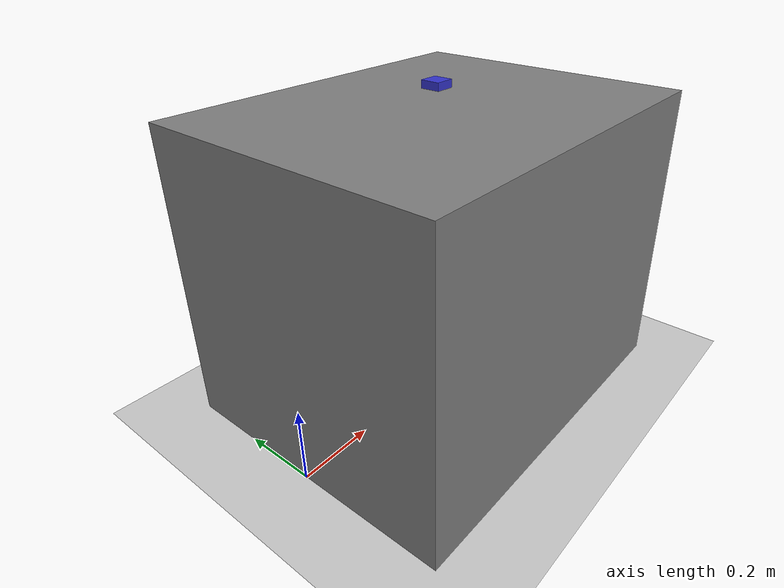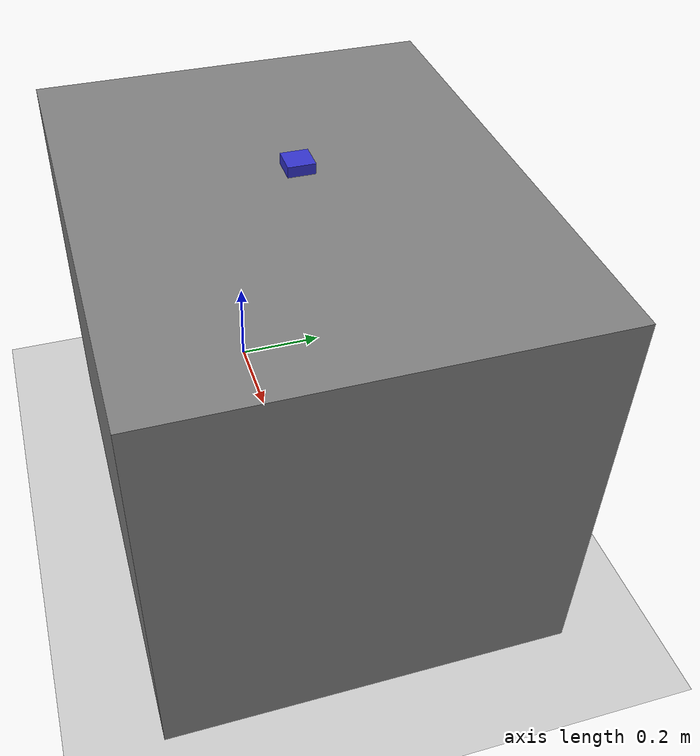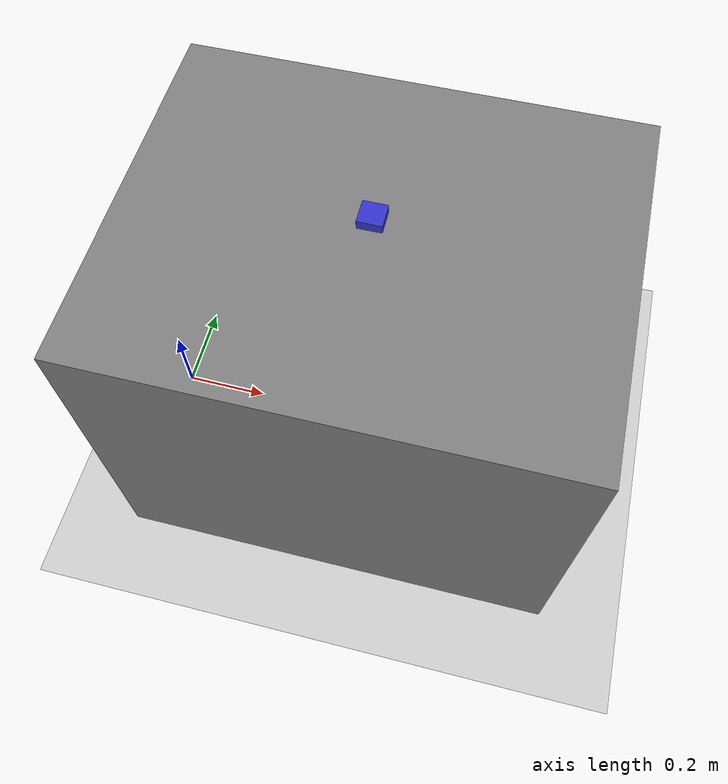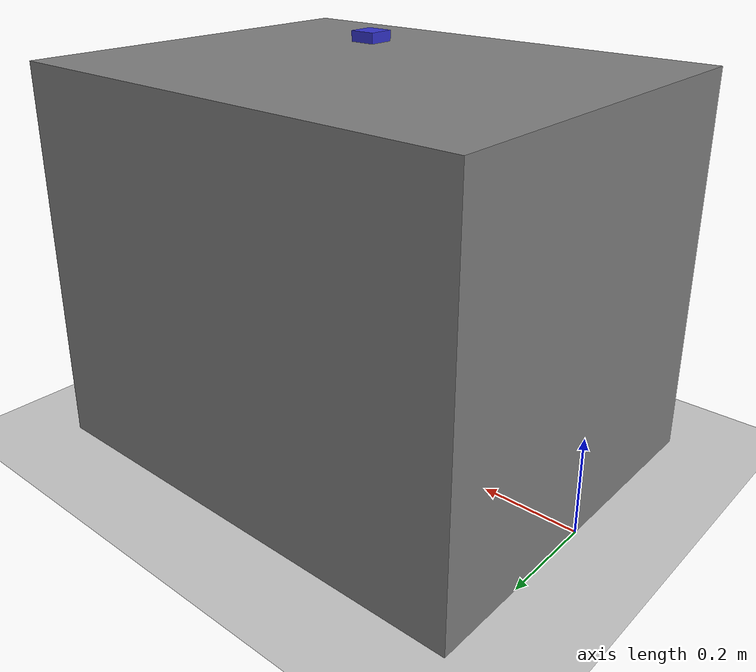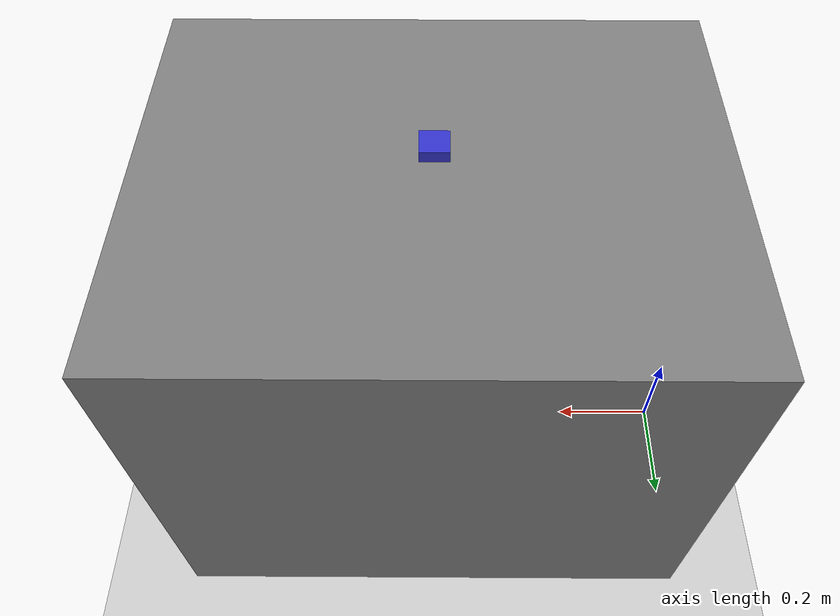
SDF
<?xml version="1.0"?>
<sdf version="1.6">
  <world name="cable_insertion_world">

    <!-- Physics settings -->
    <physics type="ode">
      <max_step_size>0.001</max_step_size>
      <real_time_factor>1.0</real_time_factor>
      <real_time_update_rate>1000</real_time_update_rate>
    </physics>

    <!-- Lighting -->
    <light name="sun" type="directional">
      <cast_shadows>true</cast_shadows>
      <pose>0 0 10 0 0 0</pose>
      <diffuse>0.8 0.8 0.8 1</diffuse>
      <specular>0.2 0.2 0.2 1</specular>
      <attenuation>
        <range>1000</range>
        <constant>0.9</constant>
        <linear>0.01</linear>
        <quadratic>0.001</quadratic>
      </attenuation>
      <direction>-0.5 0.1 -0.9</direction>
    </light>

    <!-- Ground plane -->
    <model name="ground_plane">
      <static>true</static>
      <link name="link">
        <collision name="collision">
          <geometry>
            <plane>
              <normal>0 0 1</normal>
              <size>100 100</size>
            </plane>
          </geometry>
        </collision>
        <visual name="visual">
          <geometry>
            <plane>
              <normal>0 0 1</normal>
              <size>100 100</size>
            </plane>
          </geometry>
          <material>
            <ambient>0.8 0.8 0.8 1</ambient>
            <diffuse>0.8 0.8 0.8 1</diffuse>
          </material>
        </visual>
      </link>
    </model>

    <!-- Workbench -->
    <model name="workbench">
      <static>true</static>
      <pose>0.5 0 0.4 0 0 0</pose>
      <link name="link">
        <collision name="collision">
          <geometry>
            <box>
              <size>1.0 0.8 0.8</size>
            </box>
          </geometry>
        </collision>
        <visual name="visual">
          <geometry>
            <box>
              <size>1.0 0.8 0.8</size>
            </box>
          </geometry>
          <material>
            <ambient>0.5 0.5 0.5 1</ambient>
            <diffuse>0.5 0.5 0.5 1</diffuse>
          </material>
        </visual>
      </link>
    </model>

    <!-- Target connector socket -->
    <model name="connector_socket">
      <static>true</static>
      <pose>0.5 0 0.85 0 0 0</pose>
      <link name="link">
        <collision name="collision">
          <geometry>
            <box>
              <size>0.05 0.05 0.02</size>
            </box>
          </geometry>
        </collision>
        <visual name="visual">
          <geometry>
            <box>
              <size>0.05 0.05 0.02</size>
            </box>
          </geometry>
          <material>
            <ambient>0.2 0.2 0.8 1</ambient>
            <diffuse>0.2 0.2 0.8 1</diffuse>
          </material>
        </visual>
      </link>
    </model>

    <!-- Camera for perception -->
    <model name="camera">
      <static>true</static>
      <pose>0.5 -0.5 1.2 0 0.5 1.57</pose>
      <link name="link">
        <sensor name="camera" type="camera">
          <camera>
            <horizontal_fov>1.047</horizontal_fov>
            <image>
              <width>640</width>
              <height>480</height>
            </image>
            <clip>
              <near>0.1</near>
              <far>100</far>
            </clip>
          </camera>
          <always_on>1</always_on>
          <update_rate>30</update_rate>
          <visualize>true</visualize>
        </sensor>
      </link>
    </model>

    <!-- Depth camera -->
    <model name="depth_camera">
      <static>true</static>
      <pose>0.5 -0.5 1.2 0 0.5 1.57</pose>
      <link name="link">
        <sensor name="depth_camera" type="depth">
          <camera>
            <horizontal_fov>1.047</horizontal_fov>
            <image>
              <width>640</width>
              <height>480</height>
            </image>
            <clip>
              <near>0.1</near>
              <far>10</far>
            </clip>
          </camera>
          <always_on>1</always_on>
          <update_rate>30</update_rate>
          <visualize>true</visualize>
        </sensor>
      </link>
    </model>

    <!-- Scene plugin -->
    <plugin name="gazebo_ros_state" filename="libgazebo_ros_state.so">
      <ros>
        <namespace>/gazebo</namespace>
      </ros>
      <update_rate>10.0</update_rate>
    </plugin>

  </world>
</sdf>
